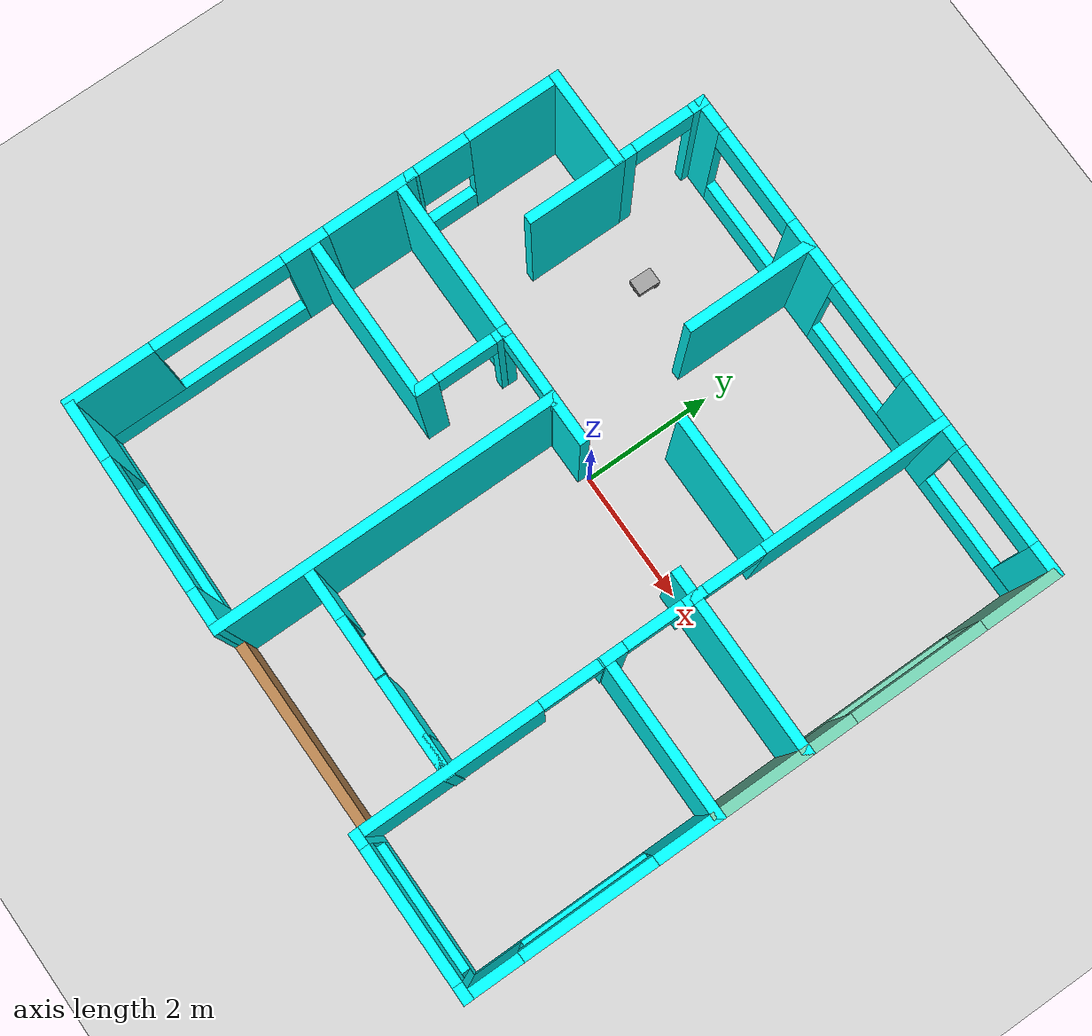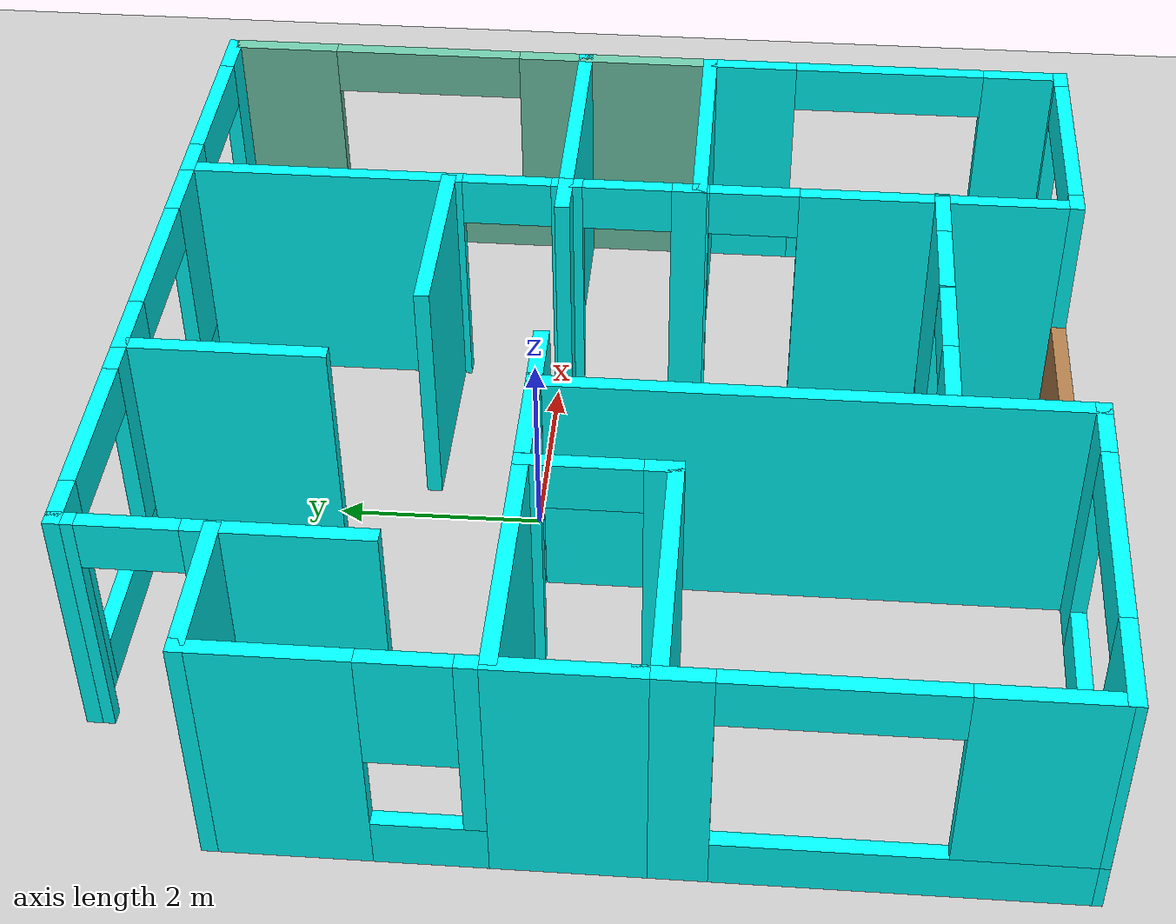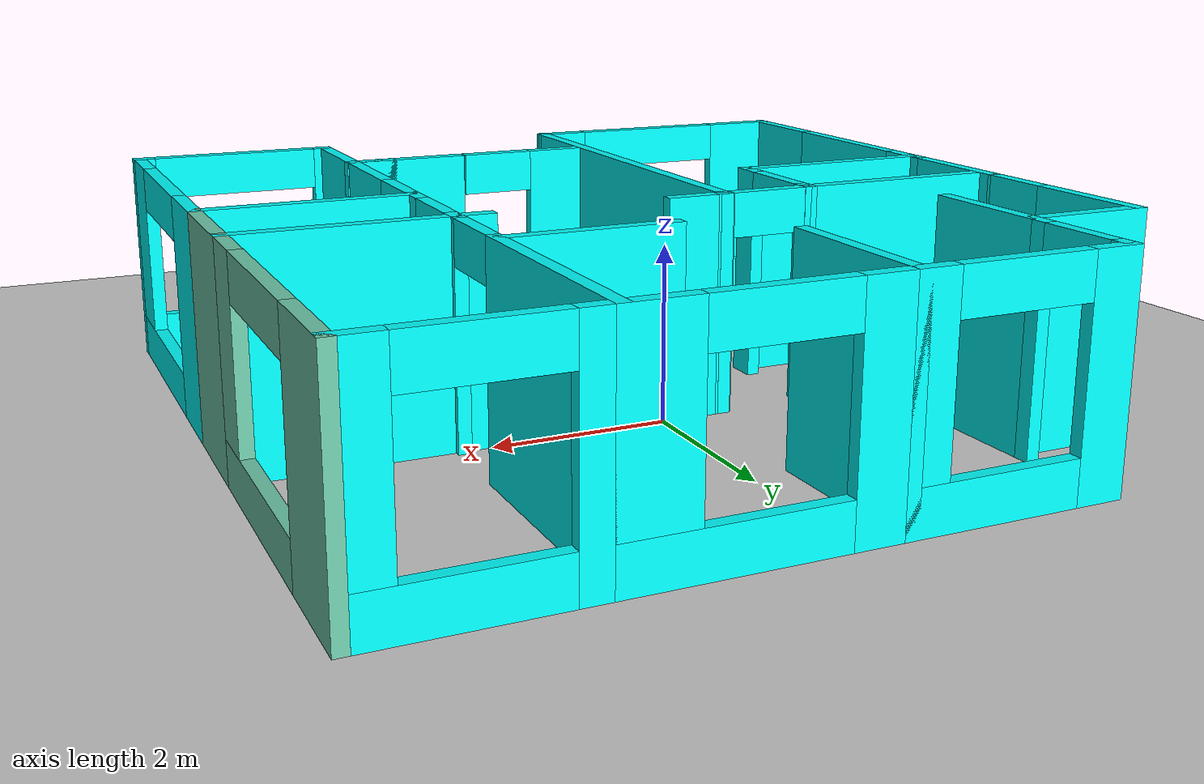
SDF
<sdf version="1.6">
 <world name="default">
  <model name="ground_plane">
   <static>1</static>
   <link name="link">
    <collision name="collision">
     <geometry><plane><normal>0 0 1</normal><size>100 100</size></plane></geometry>
     <surface><friction><ode><mu>100</mu><mu2>50</mu2></ode></friction></surface>
    </collision>
    <visual name="visual">
     <cast_shadows>0</cast_shadows>
     <geometry><plane><normal>0 0 1</normal><size>100 100</size></plane></geometry>
     <material>
      <script><uri>file://media/materials/scripts/gazebo.material</uri><name>Gazebo/Grey</name></script>
     </material>
    </visual>
   </link>
  </model>
  <model name="Building">
   <pose>0.22556 -0.704376 0 0 -0 0</pose>
   <link name="Wall_101">
    <collision name="Wall_101_Collision">
     <geometry><box><size>2.5 0.15 2.5</size></box></geometry>
     <pose>0 0 1.25 0 -0 0</pose>
    </collision>
    <visual name="Wall_101_Visual">
     <pose>0 0 1.25 0 -0 0</pose>
     <geometry><box><size>2.5 0.15 2.5</size></box></geometry>
     <material>
      <script><uri>file://media/materials/scripts/gazebo.material</uri><name>Gazebo/Grey</name></script>
      <ambient>0 1 1 1</ambient>
     </material>
     <meta><layer>0</layer></meta>
    </visual>
    <pose>-3.22857 0.625381 0 0 -0 3.14159</pose>
   </link>
   <link name="Wall_103">
    <pose>-1.5069 0.625381 0 0 -0 0</pose>
    <visual name="Wall_103_Visual_0">
     <pose>-0.545502 0 1.25 0 -0 0</pose>
     <geometry><box><size>0.152336 0.15 2.5</size></box></geometry>
     <material>
      <script><uri>file://media/materials/scripts/gazebo.material</uri><name>Gazebo/Grey</name></script>
      <ambient>0 1 1 1</ambient>
     </material>
     <meta><layer>0</layer></meta>
    </visual>
    <collision name="Wall_103_Collision_0">
     <geometry><box><size>0.152336 0.15 2.5</size></box></geometry>
     <pose>-0.545502 0 1.25 0 -0 0</pose>
    </collision>
    <visual name="Wall_103_Visual_1">
     <pose>0.526168 0 1.25 0 -0 0</pose>
     <geometry><box><size>0.191004 0.15 2.5</size></box></geometry>
     <material>
      <script><uri>file://media/materials/scripts/gazebo.material</uri><name>Gazebo/Grey</name></script>
      <ambient>0 1 1 1</ambient>
     </material>
     <meta><layer>0</layer></meta>
    </visual>
    <collision name="Wall_103_Collision_1">
     <geometry><box><size>0.191004 0.15 2.5</size></box></geometry>
     <pose>0.526168 0 1.25 0 -0 0</pose>
    </collision>
    <visual name="Wall_103_Visual_2">
     <pose>-0.019334 0 2.25 0 -0 0</pose>
     <geometry><box><size>0.9 0.15 0.5</size></box></geometry>
     <material>
      <script><uri>file://media/materials/scripts/gazebo.material</uri><name>Gazebo/Grey</name></script>
      <ambient>0 1 1 1</ambient>
     </material>
     <meta><layer>0</layer></meta>
    </visual>
    <collision name="Wall_103_Collision_2">
     <geometry><box><size>0.9 0.15 0.5</size></box></geometry>
     <pose>-0.019334 0 2.25 0 -0 0</pose>
    </collision>
   </link>
   <link name="Wall_105">
    <collision name="Wall_105_Collision">
     <geometry><box><size>0.75666 0.15 2.5</size></box></geometry>
     <pose>0 0 1.25 0 -0 0</pose>
    </collision>
    <visual name="Wall_105_Visual">
     <pose>0 0 1.25 0 -0 0</pose>
     <geometry><box><size>0.75666 0.15 2.5</size></box></geometry>
     <material>
      <script><uri>file://media/materials/scripts/gazebo.material</uri><name>Gazebo/Grey</name></script>
      <ambient>0 1 1 1</ambient>
     </material>
     <meta><layer>0</layer></meta>
    </visual>
    <pose>-0.656896 0.625381 0 0 -0 0</pose>
   </link>
   <link name="Wall_108">
    <collision name="Wall_108_Collision">
     <geometry><box><size>5.25 0.15 2.5</size></box></geometry>
     <pose>0 0 1.25 0 -0 0</pose>
    </collision>
    <visual name="Wall_108_Visual">
     <pose>0 0 1.25 0 -0 0</pose>
     <geometry><box><size>5.25 0.15 2.5</size></box></geometry>
     <material>
      <script><uri>file://media/materials/scripts/gazebo.material</uri><name>Gazebo/Grey</name></script>
      <ambient>0 1 1 1</ambient>
     </material>
     <meta><layer>0</layer></meta>
    </visual>
    <pose>-0.990859 -1.9245 0 0 0 -1.57088</pose>
   </link>
   <link name="Wall_112">
    <pose>2.10727 -2.52462 0 0 0 -1.5708</pose>
    <visual name="Wall_112_Visual_0">
     <pose>-1.78805 0 1.25 0 -0 0</pose>
     <geometry><box><size>0.173908 0.15 2.5</size></box></geometry>
     <material>
      <script><uri>file://media/materials/scripts/gazebo.material</uri><name>Gazebo/Grey</name></script>
      <ambient>0 1 1 1</ambient>
     </material>
     <meta><layer>0</layer></meta>
    </visual>
    <collision name="Wall_112_Collision_0">
     <geometry><box><size>0.173908 0.15 2.5</size></box></geometry>
     <pose>-1.78805 0 1.25 0 -0 0</pose>
    </collision>
    <visual name="Wall_112_Visual_1">
     <pose>0.536954 0 1.25 0 -0 0</pose>
     <geometry><box><size>2.67609 0.15 2.5</size></box></geometry>
     <material>
      <script><uri>file://media/materials/scripts/gazebo.material</uri><name>Gazebo/Grey</name></script>
      <ambient>0 1 1 1</ambient>
     </material>
     <meta><layer>0</layer></meta>
    </visual>
    <collision name="Wall_112_Collision_1">
     <geometry><box><size>2.67609 0.15 2.5</size></box></geometry>
     <pose>0.536954 0 1.25 0 -0 0</pose>
    </collision>
    <visual name="Wall_112_Visual_2">
     <pose>-1.25109 0 2.25 0 -0 0</pose>
     <geometry><box><size>0.9 0.15 0.5</size></box></geometry>
     <material>
      <script><uri>file://media/materials/scripts/gazebo.material</uri><name>Gazebo/Grey</name></script>
      <ambient>0 1 1 1</ambient>
     </material>
     <meta><layer>0</layer></meta>
    </visual>
    <collision name="Wall_112_Collision_2">
     <geometry><box><size>0.9 0.15 0.5</size></box></geometry>
     <pose>-1.25109 0 2.25 0 -0 0</pose>
    </collision>
   </link>
   <link name="Wall_114">
    <pose>0.571285 -3.1442 0 0 -0 0</pose>
    <visual name="Wall_114_Visual_0">
     <pose>-1.20415 0 1.25 0 -0 0</pose>
     <geometry><box><size>0.8417 0.15 2.5</size></box></geometry>
     <material>
      <script><uri>file://media/materials/scripts/gazebo.material</uri><name>Gazebo/Grey</name></script>
      <ambient>0 1 1 1</ambient>
     </material>
     <meta><layer>0</layer></meta>
    </visual>
    <collision name="Wall_114_Collision_0">
     <geometry><box><size>0.8417 0.15 2.5</size></box></geometry>
     <pose>-1.20415 0 1.25 0 -0 0</pose>
    </collision>
    <visual name="Wall_114_Visual_1">
     <pose>0.87085 0 1.25 0 -0 0</pose>
     <geometry><box><size>1.5083 0.15 2.5</size></box></geometry>
     <material>
      <script><uri>file://media/materials/scripts/gazebo.material</uri><name>Gazebo/Grey</name></script>
      <ambient>0 1 1 1</ambient>
     </material>
     <meta><layer>0</layer></meta>
    </visual>
    <collision name="Wall_114_Collision_1">
     <geometry><box><size>1.5083 0.15 2.5</size></box></geometry>
     <pose>0.87085 0 1.25 0 -0 0</pose>
    </collision>
    <visual name="Wall_114_Visual_2">
     <pose>1.3119 0 1.25 0 -0 0</pose>
     <geometry><box><size>0.626192 0.15 2.5</size></box></geometry>
     <material>
      <script><uri>file://media/materials/scripts/gazebo.material</uri><name>Gazebo/Grey</name></script>
      <ambient>0 1 1 1</ambient>
     </material>
     <meta><layer>0</layer></meta>
    </visual>
    <collision name="Wall_114_Collision_2">
     <geometry><box><size>0.626192 0.15 2.5</size></box></geometry>
     <pose>1.3119 0 1.25 0 -0 0</pose>
    </collision>
    <visual name="Wall_114_Visual_3">
     <pose>-0.342246 0 2.25 0 -0 0</pose>
     <geometry><box><size>0.882108 0.15 0.5</size></box></geometry>
     <material>
      <script><uri>file://media/materials/scripts/gazebo.material</uri><name>Gazebo/Grey</name></script>
      <ambient>0 1 1 1</ambient>
     </material>
     <meta><layer>0</layer></meta>
    </visual>
    <collision name="Wall_114_Collision_3">
     <geometry><box><size>0.882108 0.15 0.5</size></box></geometry>
     <pose>-0.342246 0 2.25 0 -0 0</pose>
    </collision>
   </link>
   <link name="Wall_118">
    <collision name="Wall_118_Collision">
     <geometry><box><size>3.25 0.15 1</size></box></geometry>
     <pose>0 0 0.5 0 -0 0</pose>
    </collision>
    <visual name="Wall_118_Visual">
     <pose>0 0 0.5 0 -0 0</pose>
     <geometry><box><size>3.25 0.15 1</size></box></geometry>
     <material>
      <script><uri>file://media/materials/scripts/gazebo.material</uri><name>Gazebo/Wood</name></script>
      <ambient>0 1 1 1</ambient>
     </material>
     <meta><layer>0</layer></meta>
    </visual>
    <pose>0.558926 -4.47438 0 0 -0 0</pose>
   </link>
   <link name="Wall_119">
    <pose>3.28414 -4.4745 0 0 0 -9.9e-05</pose>
    <visual name="Wall_119_Visual_0">
     <pose>-1.1272 0 1.25 0 -0 0</pose>
     <geometry><box><size>0.245591 0.15 2.5</size></box></geometry>
     <material>
      <script><uri>file://media/materials/scripts/gazebo.material</uri><name>Gazebo/Grey</name></script>
      <ambient>0 1 1 1</ambient>
     </material>
     <meta><layer>0</layer></meta>
    </visual>
    <collision name="Wall_119_Collision_0">
     <geometry><box><size>0.245591 0.15 2.5</size></box></geometry>
     <pose>-1.1272 0 1.25 0 -0 0</pose>
    </collision>
    <visual name="Wall_119_Visual_1">
     <pose>0.122796 0 0.25 0 -0 0</pose>
     <geometry><box><size>2.25441 0.15 0.5</size></box></geometry>
     <material>
      <script><uri>file://media/materials/scripts/gazebo.material</uri><name>Gazebo/Grey</name></script>
      <ambient>0 1 1 1</ambient>
     </material>
     <meta><layer>0</layer></meta>
    </visual>
    <collision name="Wall_119_Collision_1">
     <geometry><box><size>2.25441 0.15 0.5</size></box></geometry>
     <pose>0.122796 0 0.25 0 -0 0</pose>
    </collision>
    <visual name="Wall_119_Visual_2">
     <pose>1.1228 0 1.5 0 -0 0</pose>
     <geometry><box><size>0.254409 0.15 2</size></box></geometry>
     <material>
      <script><uri>file://media/materials/scripts/gazebo.material</uri><name>Gazebo/Grey</name></script>
      <ambient>0 1 1 1</ambient>
     </material>
     <meta><layer>0</layer></meta>
    </visual>
    <collision name="Wall_119_Collision_2">
     <geometry><box><size>0.254409 0.15 2</size></box></geometry>
     <pose>1.1228 0 1.5 0 -0 0</pose>
    </collision>
    <visual name="Wall_119_Visual_3">
     <pose>-0.004409 0 2.25 0 -0 0</pose>
     <geometry><box><size>2 0.15 0.5</size></box></geometry>
     <material>
      <script><uri>file://media/materials/scripts/gazebo.material</uri><name>Gazebo/Grey</name></script>
      <ambient>0 1 1 1</ambient>
     </material>
     <meta><layer>0</layer></meta>
    </visual>
    <collision name="Wall_119_Collision_3">
     <geometry><box><size>2 0.15 0.5</size></box></geometry>
     <pose>-0.004409 0 2.25 0 -0 0</pose>
    </collision>
   </link>
   <link name="Wall_121">
    <pose>-2.72451 -4.45129 0 0 -0 3.12827</pose>
    <visual name="Wall_121_Visual_0">
     <pose>-1.47874 0 1.25 0 -0 0</pose>
     <geometry><box><size>0.660134 0.15 2.5</size></box></geometry>
     <material>
      <script><uri>file://media/materials/scripts/gazebo.material</uri><name>Gazebo/Grey</name></script>
      <ambient>0 1 1 1</ambient>
     </material>
     <meta><layer>0</layer></meta>
    </visual>
    <collision name="Wall_121_Collision_0">
     <geometry><box><size>0.660134 0.15 2.5</size></box></geometry>
     <pose>-1.47874 0 1.25 0 -0 0</pose>
    </collision>
    <visual name="Wall_121_Visual_1">
     <pose>0.330067 0 0.25 0 -0 0</pose>
     <geometry><box><size>2.95747 0.15 0.5</size></box></geometry>
     <material>
      <script><uri>file://media/materials/scripts/gazebo.material</uri><name>Gazebo/Grey</name></script>
      <ambient>0 1 1 1</ambient>
     </material>
     <meta><layer>0</layer></meta>
    </visual>
    <collision name="Wall_121_Collision_1">
     <geometry><box><size>2.95747 0.15 0.5</size></box></geometry>
     <pose>0.330067 0 0.25 0 -0 0</pose>
    </collision>
    <visual name="Wall_121_Visual_2">
     <pose>1.33007 0 1.5 0 -0 0</pose>
     <geometry><box><size>0.957473 0.15 2</size></box></geometry>
     <material>
      <script><uri>file://media/materials/scripts/gazebo.material</uri><name>Gazebo/Grey</name></script>
      <ambient>0 1 1 1</ambient>
     </material>
     <meta><layer>0</layer></meta>
    </visual>
    <collision name="Wall_121_Collision_2">
     <geometry><box><size>0.957473 0.15 2</size></box></geometry>
     <pose>1.33007 0 1.5 0 -0 0</pose>
    </collision>
    <visual name="Wall_121_Visual_3">
     <pose>-0.148669 0 2.25 0 -0 0</pose>
     <geometry><box><size>2 0.15 0.5</size></box></geometry>
     <material>
      <script><uri>file://media/materials/scripts/gazebo.material</uri><name>Gazebo/Grey</name></script>
      <ambient>0 1 1 1</ambient>
     </material>
     <meta><layer>0</layer></meta>
    </visual>
    <collision name="Wall_121_Collision_3">
     <geometry><box><size>2 0.15 0.5</size></box></geometry>
     <pose>-0.148669 0 2.25 0 -0 0</pose>
    </collision>
   </link>
   <link name="Wall_47">
    <pose>-1.91773 4.47538 0 0 -0 0</pose>
    <visual name="Wall_47_Visual_0">
     <pose>-0.97915 0 1.25 0 -0 0</pose>
     <geometry><box><size>0.541699 0.15 2.5</size></box></geometry>
     <material>
      <script><uri>file://media/materials/scripts/gazebo.material</uri><name>Gazebo/Grey</name></script>
      <ambient>0 1 1 1</ambient>
     </material>
     <meta><layer>0</layer></meta>
    </visual>
    <collision name="Wall_47_Collision_0">
     <geometry><box><size>0.541699 0.15 2.5</size></box></geometry>
     <pose>-0.97915 0 1.25 0 -0 0</pose>
    </collision>
    <visual name="Wall_47_Visual_1">
     <pose>0.27085 0 0.25 0 -0 0</pose>
     <geometry><box><size>1.9583 0.15 0.5</size></box></geometry>
     <material>
      <script><uri>file://media/materials/scripts/gazebo.material</uri><name>Gazebo/Grey</name></script>
      <ambient>0 1 1 1</ambient>
     </material>
     <meta><layer>0</layer></meta>
    </visual>
    <collision name="Wall_47_Collision_1">
     <geometry><box><size>1.9583 0.15 0.5</size></box></geometry>
     <pose>0.27085 0 0.25 0 -0 0</pose>
    </collision>
    <visual name="Wall_47_Visual_2">
     <pose>1.02085 0 1.5 0 -0 0</pose>
     <geometry><box><size>0.458301 0.15 2</size></box></geometry>
     <material>
      <script><uri>file://media/materials/scripts/gazebo.material</uri><name>Gazebo/Grey</name></script>
      <ambient>0 1 1 1</ambient>
     </material>
     <meta><layer>0</layer></meta>
    </visual>
    <collision name="Wall_47_Collision_2">
     <geometry><box><size>0.458301 0.15 2</size></box></geometry>
     <pose>1.02085 0 1.5 0 -0 0</pose>
    </collision>
    <visual name="Wall_47_Visual_3">
     <pose>0.041699 0 2.25 0 -0 0</pose>
     <geometry><box><size>1.5 0.15 0.5</size></box></geometry>
     <material>
      <script><uri>file://media/materials/scripts/gazebo.material</uri><name>Gazebo/Grey</name></script>
      <ambient>0 1 1 1</ambient>
     </material>
     <meta><layer>0</layer></meta>
    </visual>
    <collision name="Wall_47_Collision_3">
     <geometry><box><size>1.5 0.15 0.5</size></box></geometry>
     <pose>0.041699 0 2.25 0 -0 0</pose>
    </collision>
   </link>
   <link name="Wall_48">
    <pose>0.682269 4.47538 0 0 -0 0</pose>
    <visual name="Wall_48_Visual_0">
     <pose>-1.15703 0 1.25 0 -0 0</pose>
     <geometry><box><size>0.685935 0.15 2.5</size></box></geometry>
     <material>
      <script><uri>file://media/materials/scripts/gazebo.material</uri><name>Gazebo/Grey</name></script>
      <ambient>0 1 1 1</ambient>
     </material>
     <meta><layer>0</layer></meta>
    </visual>
    <collision name="Wall_48_Collision_0">
     <geometry><box><size>0.685935 0.15 2.5</size></box></geometry>
     <pose>-1.15703 0 1.25 0 -0 0</pose>
    </collision>
    <visual name="Wall_48_Visual_1">
     <pose>0.342968 0 0.25 0 -0 0</pose>
     <geometry><box><size>2.31406 0.15 0.5</size></box></geometry>
     <material>
      <script><uri>file://media/materials/scripts/gazebo.material</uri><name>Gazebo/Grey</name></script>
      <ambient>0 1 1 1</ambient>
     </material>
     <meta><layer>0</layer></meta>
    </visual>
    <collision name="Wall_48_Collision_1">
     <geometry><box><size>2.31406 0.15 0.5</size></box></geometry>
     <pose>0.342968 0 0.25 0 -0 0</pose>
    </collision>
    <visual name="Wall_48_Visual_2">
     <pose>1.09297 0 1.5 0 -0 0</pose>
     <geometry><box><size>0.814065 0.15 2</size></box></geometry>
     <material>
      <script><uri>file://media/materials/scripts/gazebo.material</uri><name>Gazebo/Grey</name></script>
      <ambient>0 1 1 1</ambient>
     </material>
     <meta><layer>0</layer></meta>
    </visual>
    <collision name="Wall_48_Collision_2">
     <geometry><box><size>0.814065 0.15 2</size></box></geometry>
     <pose>1.09297 0 1.5 0 -0 0</pose>
    </collision>
    <visual name="Wall_48_Visual_3">
     <pose>-0.064065 0 2.25 0 -0 0</pose>
     <geometry><box><size>1.5 0.15 0.5</size></box></geometry>
     <material>
      <script><uri>file://media/materials/scripts/gazebo.material</uri><name>Gazebo/Grey</name></script>
      <ambient>0 1 1 1</ambient>
     </material>
     <meta><layer>0</layer></meta>
    </visual>
    <collision name="Wall_48_Collision_3">
     <geometry><box><size>1.5 0.15 0.5</size></box></geometry>
     <pose>-0.064065 0 2.25 0 -0 0</pose>
    </collision>
   </link>
   <link name="Wall_49">
    <pose>3.28227 4.47538 0 0 -0 0</pose>
    <visual name="Wall_49_Visual_0">
     <pose>-1.01648 0 1.25 0 -0 0</pose>
     <geometry><box><size>0.467049 0.15 2.5</size></box></geometry>
     <material>
      <script><uri>file://media/materials/scripts/gazebo.material</uri><name>Gazebo/Grey</name></script>
      <ambient>0 1 1 1</ambient>
     </material>
     <meta><layer>0</layer></meta>
    </visual>
    <collision name="Wall_49_Collision_0">
     <geometry><box><size>0.467049 0.15 2.5</size></box></geometry>
     <pose>-1.01648 0 1.25 0 -0 0</pose>
    </collision>
    <visual name="Wall_49_Visual_1">
     <pose>0.233524 0 0.25 0 -0 0</pose>
     <geometry><box><size>2.03295 0.15 0.5</size></box></geometry>
     <material>
      <script><uri>file://media/materials/scripts/gazebo.material</uri><name>Gazebo/Grey</name></script>
      <ambient>0 1 1 1</ambient>
     </material>
     <meta><layer>0</layer></meta>
    </visual>
    <collision name="Wall_49_Collision_1">
     <geometry><box><size>2.03295 0.15 0.5</size></box></geometry>
     <pose>0.233524 0 0.25 0 -0 0</pose>
    </collision>
    <visual name="Wall_49_Visual_2">
     <pose>0.983524 0 1.5 0 -0 0</pose>
     <geometry><box><size>0.532951 0.15 2</size></box></geometry>
     <material>
      <script><uri>file://media/materials/scripts/gazebo.material</uri><name>Gazebo/Grey</name></script>
      <ambient>0 1 1 1</ambient>
     </material>
     <meta><layer>0</layer></meta>
    </visual>
    <collision name="Wall_49_Collision_2">
     <geometry><box><size>0.532951 0.15 2</size></box></geometry>
     <pose>0.983524 0 1.5 0 -0 0</pose>
    </collision>
    <visual name="Wall_49_Visual_3">
     <pose>-0.032951 0 2.25 0 -0 0</pose>
     <geometry><box><size>1.5 0.15 0.5</size></box></geometry>
     <material>
      <script><uri>file://media/materials/scripts/gazebo.material</uri><name>Gazebo/Grey</name></script>
      <ambient>0 1 1 1</ambient>
     </material>
     <meta><layer>0</layer></meta>
    </visual>
    <collision name="Wall_49_Collision_3">
     <geometry><box><size>1.5 0.15 0.5</size></box></geometry>
     <pose>-0.032951 0 2.25 0 -0 0</pose>
    </collision>
   </link>
   <link name="Wall_50">
    <pose>4.45727 2.55038 0 0 0 -1.5708</pose>
    <visual name="Wall_50_Visual_0">
     <pose>-1.39789 0 1.25 0 -0 0</pose>
     <geometry><box><size>1.20423 0.15 2.5</size></box></geometry>
     <material>
      <script><uri>file://media/materials/scripts/gazebo.material</uri><name>Gazebo/Grey</name></script>
      <ambient>0.435294 0.796078 0.67451 1</ambient>
     </material>
     <meta><layer>0</layer></meta>
    </visual>
    <collision name="Wall_50_Collision_0">
     <geometry><box><size>1.20423 0.15 2.5</size></box></geometry>
     <pose>-1.39789 0 1.25 0 -0 0</pose>
    </collision>
    <visual name="Wall_50_Visual_1">
     <pose>0.602112 0 0.25 0 -0 0</pose>
     <geometry><box><size>2.79577 0.15 0.5</size></box></geometry>
     <material>
      <script><uri>file://media/materials/scripts/gazebo.material</uri><name>Gazebo/Grey</name></script>
      <ambient>0.435294 0.796078 0.67451 1</ambient>
     </material>
     <meta><layer>0</layer></meta>
    </visual>
    <collision name="Wall_50_Collision_1">
     <geometry><box><size>2.79577 0.15 0.5</size></box></geometry>
     <pose>0.602112 0 0.25 0 -0 0</pose>
    </collision>
    <visual name="Wall_50_Visual_2">
     <pose>1.60211 0 1.5 0 -0 0</pose>
     <geometry><box><size>0.795775 0.15 2</size></box></geometry>
     <material>
      <script><uri>file://media/materials/scripts/gazebo.material</uri><name>Gazebo/Grey</name></script>
      <ambient>0.435294 0.796078 0.67451 1</ambient>
     </material>
     <meta><layer>0</layer></meta>
    </visual>
    <collision name="Wall_50_Collision_2">
     <geometry><box><size>0.795775 0.15 2</size></box></geometry>
     <pose>1.60211 0 1.5 0 -0 0</pose>
    </collision>
    <visual name="Wall_50_Visual_3">
     <pose>0.204225 0 2.25 0 -0 0</pose>
     <geometry><box><size>2 0.15 0.5</size></box></geometry>
     <material>
      <script><uri>file://media/materials/scripts/gazebo.material</uri><name>Gazebo/Grey</name></script>
      <ambient>0.435294 0.796078 0.67451 1</ambient>
     </material>
     <meta><layer>0</layer></meta>
    </visual>
    <collision name="Wall_50_Collision_3">
     <geometry><box><size>2 0.15 0.5</size></box></geometry>
     <pose>0.204225 0 2.25 0 -0 0</pose>
    </collision>
   </link>
   <link name="Wall_55">
    <pose>-3.09273 3.80038 0 0 0 -1.5708</pose>
    <visual name="Wall_55_Visual_0">
     <pose>-0.618116 0 1.25 0 -0 0</pose>
     <geometry><box><size>0.263768 0.15 2.5</size></box></geometry>
     <material>
      <script><uri>file://media/materials/scripts/gazebo.material</uri><name>Gazebo/Grey</name></script>
      <ambient>0 1 1 1</ambient>
     </material>
     <meta><layer>0</layer></meta>
    </visual>
    <collision name="Wall_55_Collision_0">
     <geometry><box><size>0.263768 0.15 2.5</size></box></geometry>
     <pose>-0.618116 0 1.25 0 -0 0</pose>
    </collision>
    <visual name="Wall_55_Visual_1">
     <pose>0.581884 0 1.25 0 -0 0</pose>
     <geometry><box><size>0.336232 0.15 2.5</size></box></geometry>
     <material>
      <script><uri>file://media/materials/scripts/gazebo.material</uri><name>Gazebo/Grey</name></script>
      <ambient>0 1 1 1</ambient>
     </material>
     <meta><layer>0</layer></meta>
    </visual>
    <collision name="Wall_55_Collision_1">
     <geometry><box><size>0.336232 0.15 2.5</size></box></geometry>
     <pose>0.581884 0 1.25 0 -0 0</pose>
    </collision>
    <visual name="Wall_55_Visual_2">
     <pose>-0.036232 0 2.25 0 -0 0</pose>
     <geometry><box><size>0.9 0.15 0.5</size></box></geometry>
     <material>
      <script><uri>file://media/materials/scripts/gazebo.material</uri><name>Gazebo/Grey</name></script>
      <ambient>0 1 1 1</ambient>
     </material>
     <meta><layer>0</layer></meta>
    </visual>
    <collision name="Wall_55_Collision_2">
     <geometry><box><size>0.9 0.15 0.5</size></box></geometry>
     <pose>-0.036232 0 2.25 0 -0 0</pose>
    </collision>
   </link>
   <link name="Wall_56">
    <collision name="Wall_56_Collision">
     <geometry><box><size>1.5 0.15 2.5</size></box></geometry>
     <pose>0 0 1.25 0 -0 0</pose>
    </collision>
    <visual name="Wall_56_Visual">
     <pose>0 0 1.25 0 -0 0</pose>
     <geometry><box><size>1.5 0.15 2.5</size></box></geometry>
     <material>
      <script><uri>file://media/materials/scripts/gazebo.material</uri><name>Gazebo/Grey</name></script>
      <ambient>0 1 1 1</ambient>
     </material>
     <meta><layer>0</layer></meta>
    </visual>
    <pose>-3.09273 2.45038 0 0 0 -1.5708</pose>
   </link>
   <link name="Wall_58">
    <collision name="Wall_58_Collision">
     <geometry><box><size>1.5 0.15 2.5</size></box></geometry>
     <pose>0 0 1.25 0 -0 0</pose>
    </collision>
    <visual name="Wall_58_Visual">
     <pose>0 0 1.25 0 -0 0</pose>
     <geometry><box><size>1.5 0.15 2.5</size></box></geometry>
     <material>
      <script><uri>file://media/materials/scripts/gazebo.material</uri><name>Gazebo/Grey</name></script>
      <ambient>0 1 1 1</ambient>
     </material>
     <meta><layer>0</layer></meta>
    </visual>
    <pose>-3.78294 3.1218 0 0 -0 3.14159</pose>
   </link>
   <link name="Wall_60">
    <pose>-4.45794 1.9468 0 0 0 -1.5708</pose>
    <visual name="Wall_60_Visual_0">
     <pose>-0.499975 0 1.25 0 -0 0</pose>
     <geometry><box><size>1.50005 0.15 2.5</size></box></geometry>
     <material>
      <script><uri>file://media/materials/scripts/gazebo.material</uri><name>Gazebo/Grey</name></script>
      <ambient>0 1 1 1</ambient>
     </material>
     <meta><layer>0</layer></meta>
    </visual>
    <collision name="Wall_60_Collision_0">
     <geometry><box><size>1.50005 0.15 2.5</size></box></geometry>
     <pose>-0.499975 0 1.25 0 -0 0</pose>
    </collision>
    <visual name="Wall_60_Visual_1">
     <pose>0.750025 0 0.25 0 -0 0</pose>
     <geometry><box><size>0.99995 0.15 0.5</size></box></geometry>
     <material>
      <script><uri>file://media/materials/scripts/gazebo.material</uri><name>Gazebo/Grey</name></script>
      <ambient>0 1 1 1</ambient>
     </material>
     <meta><layer>0</layer></meta>
    </visual>
    <collision name="Wall_60_Collision_1">
     <geometry><box><size>0.99995 0.15 0.5</size></box></geometry>
     <pose>0.750025 0 0.25 0 -0 0</pose>
    </collision>
    <visual name="Wall_60_Visual_2">
     <pose>1.15003 0 1.5 0 -0 0</pose>
     <geometry><box><size>0.19995 0.15 2</size></box></geometry>
     <material>
      <script><uri>file://media/materials/scripts/gazebo.material</uri><name>Gazebo/Grey</name></script>
      <ambient>0 1 1 1</ambient>
     </material>
     <meta><layer>0</layer></meta>
    </visual>
    <collision name="Wall_60_Collision_2">
     <geometry><box><size>0.19995 0.15 2</size></box></geometry>
     <pose>1.15003 0 1.5 0 -0 0</pose>
    </collision>
    <visual name="Wall_60_Visual_3">
     <pose>0.65005 0 1.9 0 -0 0</pose>
     <geometry><box><size>0.8 0.15 1.2</size></box></geometry>
     <material>
      <script><uri>file://media/materials/scripts/gazebo.material</uri><name>Gazebo/Grey</name></script>
      <ambient>0 1 1 1</ambient>
     </material>
     <meta><layer>0</layer></meta>
    </visual>
    <collision name="Wall_60_Collision_3">
     <geometry><box><size>0.8 0.15 1.2</size></box></geometry>
     <pose>0.65005 0 1.9 0 -0 0</pose>
    </collision>
   </link>
   <link name="Wall_61">
    <collision name="Wall_61_Collision">
     <geometry><box><size>1.5 0.15 2.5</size></box></geometry>
     <pose>0 0 1.25 0 -0 0</pose>
    </collision>
    <visual name="Wall_61_Visual">
     <pose>0 0 1.25 0 -0 0</pose>
     <geometry><box><size>1.5 0.15 2.5</size></box></geometry>
     <material>
      <script><uri>file://media/materials/scripts/gazebo.material</uri><name>Gazebo/Grey</name></script>
      <ambient>0 1 1 1</ambient>
     </material>
     <meta><layer>0</layer></meta>
    </visual>
    <pose>-4.45794 0.096802 0 0 0 -1.5708</pose>
   </link>
   <link name="Wall_62">
    <pose>-4.45794 -2.5032 0 0 0 -1.5708</pose>
    <visual name="Wall_62_Visual_0">
     <pose>-1.66618 0 1.25 0 -0 0</pose>
     <geometry><box><size>0.667645 0.15 2.5</size></box></geometry>
     <material>
      <script><uri>file://media/materials/scripts/gazebo.material</uri><name>Gazebo/Grey</name></script>
      <ambient>0 1 1 1</ambient>
     </material>
     <meta><layer>0</layer></meta>
    </visual>
    <collision name="Wall_62_Collision_0">
     <geometry><box><size>0.667645 0.15 2.5</size></box></geometry>
     <pose>-1.66618 0 1.25 0 -0 0</pose>
    </collision>
    <visual name="Wall_62_Visual_1">
     <pose>0.333822 0 0.25 0 -0 0</pose>
     <geometry><box><size>3.33236 0.15 0.5</size></box></geometry>
     <material>
      <script><uri>file://media/materials/scripts/gazebo.material</uri><name>Gazebo/Grey</name></script>
      <ambient>0 1 1 1</ambient>
     </material>
     <meta><layer>0</layer></meta>
    </visual>
    <collision name="Wall_62_Collision_1">
     <geometry><box><size>3.33236 0.15 0.5</size></box></geometry>
     <pose>0.333822 0 0.25 0 -0 0</pose>
    </collision>
    <visual name="Wall_62_Visual_2">
     <pose>1.33382 0 1.5 0 -0 0</pose>
     <geometry><box><size>1.33235 0.15 2</size></box></geometry>
     <material>
      <script><uri>file://media/materials/scripts/gazebo.material</uri><name>Gazebo/Grey</name></script>
      <ambient>0 1 1 1</ambient>
     </material>
     <meta><layer>0</layer></meta>
    </visual>
    <collision name="Wall_62_Collision_2">
     <geometry><box><size>1.33235 0.15 2</size></box></geometry>
     <pose>1.33382 0 1.5 0 -0 0</pose>
    </collision>
    <visual name="Wall_62_Visual_3">
     <pose>-0.332355 0 2.25 0 -0 0</pose>
     <geometry><box><size>2 0.15 0.5</size></box></geometry>
     <material>
      <script><uri>file://media/materials/scripts/gazebo.material</uri><name>Gazebo/Grey</name></script>
      <ambient>0 1 1 1</ambient>
     </material>
     <meta><layer>0</layer></meta>
    </visual>
    <collision name="Wall_62_Collision_3">
     <geometry><box><size>2 0.15 0.5</size></box></geometry>
     <pose>-0.332355 0 2.25 0 -0 0</pose>
    </collision>
   </link>
   <link name="Wall_67">
    <collision name="Wall_67_Collision">
     <geometry><box><size>1.5 0.15 2.5</size></box></geometry>
     <pose>0 0 1.25 0 -0 0</pose>
    </collision>
    <visual name="Wall_67_Visual">
     <pose>0 0 1.25 0 -0 0</pose>
     <geometry><box><size>1.5 0.15 2.5</size></box></geometry>
     <material>
      <script><uri>file://media/materials/scripts/gazebo.material</uri><name>Gazebo/Grey</name></script>
      <ambient>0.435294 0.796078 0.67451 1</ambient>
     </material>
     <meta><layer>0</layer></meta>
    </visual>
    <pose>4.45727 -0.049619 0 0 0 -1.5708</pose>
   </link>
   <link name="Wall_68">
    <pose>4.45727 -2.52462 0 0 0 -1.5708</pose>
    <visual name="Wall_68_Visual_0">
     <pose>-1.37112 0 1.25 0 -0 0</pose>
     <geometry><box><size>1.00777 0.15 2.5</size></box></geometry>
     <material>
      <script><uri>file://media/materials/scripts/gazebo.material</uri><name>Gazebo/Grey</name></script>
      <ambient>0 1 1 1</ambient>
     </material>
     <meta><layer>0</layer></meta>
    </visual>
    <collision name="Wall_68_Collision_0">
     <geometry><box><size>1.00777 0.15 2.5</size></box></geometry>
     <pose>-1.37112 0 1.25 0 -0 0</pose>
    </collision>
    <visual name="Wall_68_Visual_1">
     <pose>0.503883 0 0.25 0 -0 0</pose>
     <geometry><box><size>2.74223 0.15 0.5</size></box></geometry>
     <material>
      <script><uri>file://media/materials/scripts/gazebo.material</uri><name>Gazebo/Grey</name></script>
      <ambient>0 1 1 1</ambient>
     </material>
     <meta><layer>0</layer></meta>
    </visual>
    <collision name="Wall_68_Collision_1">
     <geometry><box><size>2.74223 0.15 0.5</size></box></geometry>
     <pose>0.503883 0 0.25 0 -0 0</pose>
    </collision>
    <visual name="Wall_68_Visual_2">
     <pose>1.50388 0 1.5 0 -0 0</pose>
     <geometry><box><size>0.742234 0.15 2</size></box></geometry>
     <material>
      <script><uri>file://media/materials/scripts/gazebo.material</uri><name>Gazebo/Grey</name></script>
      <ambient>0 1 1 1</ambient>
     </material>
     <meta><layer>0</layer></meta>
    </visual>
    <collision name="Wall_68_Collision_2">
     <geometry><box><size>0.742234 0.15 2</size></box></geometry>
     <pose>1.50388 0 1.5 0 -0 0</pose>
    </collision>
    <visual name="Wall_68_Visual_3">
     <pose>0.132766 0 2.25 0 -0 0</pose>
     <geometry><box><size>2 0.15 0.5</size></box></geometry>
     <material>
      <script><uri>file://media/materials/scripts/gazebo.material</uri><name>Gazebo/Grey</name></script>
      <ambient>0 1 1 1</ambient>
     </material>
     <meta><layer>0</layer></meta>
    </visual>
    <collision name="Wall_68_Collision_3">
     <geometry><box><size>2 0.15 0.5</size></box></geometry>
     <pose>0.132766 0 2.25 0 -0 0</pose>
    </collision>
   </link>
   <link name="Wall_72">
    <collision name="Wall_72_Collision">
     <geometry><box><size>2 0.15 2.5</size></box></geometry>
     <pose>0 0 1.25 0 -0 0</pose>
    </collision>
    <visual name="Wall_72_Visual">
     <pose>0 0 1.25 0 -0 0</pose>
     <geometry><box><size>2 0.15 2.5</size></box></geometry>
     <material>
      <script><uri>file://media/materials/scripts/gazebo.material</uri><name>Gazebo/Grey</name></script>
      <ambient>0 1 1 1</ambient>
     </material>
     <meta><layer>0</layer></meta>
    </visual>
    <pose>-0.742731 3.55038 0 0 0 -1.5708</pose>
   </link>
   <link name="Wall_74">
    <collision name="Wall_74_Collision">
     <geometry><box><size>2.5 0.15 2.5</size></box></geometry>
     <pose>0 0 1.25 0 -0 0</pose>
    </collision>
    <visual name="Wall_74_Visual">
     <pose>0 0 1.25 0 -0 0</pose>
     <geometry><box><size>2.5 0.15 2.5</size></box></geometry>
     <material>
      <script><uri>file://media/materials/scripts/gazebo.material</uri><name>Gazebo/Grey</name></script>
      <ambient>0 1 1 1</ambient>
     </material>
     <meta><layer>0</layer></meta>
    </visual>
    <pose>3.28227 0.625381 0 0 -0 3.14159</pose>
   </link>
   <link name="Wall_75">
    <pose>2.10727 2.55038 0 0 -0 1.5708</pose>
    <visual name="Wall_75_Visual_0">
     <pose>-1.88984 0 1.25 0 -0 0</pose>
     <geometry><box><size>0.220328 0.15 2.5</size></box></geometry>
     <material>
      <script><uri>file://media/materials/scripts/gazebo.material</uri><name>Gazebo/Grey</name></script>
      <ambient>0 1 1 1</ambient>
     </material>
     <meta><layer>0</layer></meta>
    </visual>
    <collision name="Wall_75_Collision_0">
     <geometry><box><size>0.220328 0.15 2.5</size></box></geometry>
     <pose>-1.88984 0 1.25 0 -0 0</pose>
    </collision>
    <visual name="Wall_75_Visual_1">
     <pose>0.560164 0 1.25 0 -0 0</pose>
     <geometry><box><size>2.87967 0.15 2.5</size></box></geometry>
     <material>
      <script><uri>file://media/materials/scripts/gazebo.material</uri><name>Gazebo/Grey</name></script>
      <ambient>0 1 1 1</ambient>
     </material>
     <meta><layer>0</layer></meta>
    </visual>
    <collision name="Wall_75_Collision_1">
     <geometry><box><size>2.87967 0.15 2.5</size></box></geometry>
     <pose>0.560164 0 1.25 0 -0 0</pose>
    </collision>
    <visual name="Wall_75_Visual_2">
     <pose>-1.32967 0 2.25 0 -0 0</pose>
     <geometry><box><size>0.9 0.15 0.5</size></box></geometry>
     <material>
      <script><uri>file://media/materials/scripts/gazebo.material</uri><name>Gazebo/Grey</name></script>
      <ambient>0 1 1 1</ambient>
     </material>
     <meta><layer>0</layer></meta>
    </visual>
    <collision name="Wall_75_Collision_2">
     <geometry><box><size>0.9 0.15 0.5</size></box></geometry>
     <pose>-1.32967 0 2.25 0 -0 0</pose>
    </collision>
   </link>
   <link name="Wall_77">
    <collision name="Wall_77_Collision">
     <geometry><box><size>2 0.15 2.5</size></box></geometry>
     <pose>0 0 1.25 0 -0 0</pose>
    </collision>
    <visual name="Wall_77_Visual">
     <pose>0 0 1.25 0 -0 0</pose>
     <geometry><box><size>2 0.15 2.5</size></box></geometry>
     <material>
      <script><uri>file://media/materials/scripts/gazebo.material</uri><name>Gazebo/Grey</name></script>
      <ambient>0 1 1 1</ambient>
     </material>
     <meta><layer>0</layer></meta>
    </visual>
    <pose>1.15324 1.81385 0 0 -0 3.14159</pose>
   </link>
   <link name="Wall_79">
    <pose>2.10727 -0.049619 0 0 0 -1.5708</pose>
    <visual name="Wall_79_Visual_0">
     <pose>-0.626814 0 1.25 0 -0 0</pose>
     <geometry><box><size>0.246373 0.15 2.5</size></box></geometry>
     <material>
      <script><uri>file://media/materials/scripts/gazebo.material</uri><name>Gazebo/Grey</name></script>
      <ambient>0 1 1 1</ambient>
     </material>
     <meta><layer>0</layer></meta>
    </visual>
    <collision name="Wall_79_Collision_0">
     <geometry><box><size>0.246373 0.15 2.5</size></box></geometry>
     <pose>-0.626814 0 1.25 0 -0 0</pose>
    </collision>
    <visual name="Wall_79_Visual_1">
     <pose>0.573186 0 1.25 0 -0 0</pose>
     <geometry><box><size>0.353627 0.15 2.5</size></box></geometry>
     <material>
      <script><uri>file://media/materials/scripts/gazebo.material</uri><name>Gazebo/Grey</name></script>
      <ambient>0 1 1 1</ambient>
     </material>
     <meta><layer>0</layer></meta>
    </visual>
    <collision name="Wall_79_Collision_1">
     <geometry><box><size>0.353627 0.15 2.5</size></box></geometry>
     <pose>0.573186 0 1.25 0 -0 0</pose>
    </collision>
    <visual name="Wall_79_Visual_2">
     <pose>-0.053627 0 2.25 0 -0 0</pose>
     <geometry><box><size>0.9 0.15 0.5</size></box></geometry>
     <material>
      <script><uri>file://media/materials/scripts/gazebo.material</uri><name>Gazebo/Grey</name></script>
      <ambient>0 1 1 1</ambient>
     </material>
     <meta><layer>0</layer></meta>
    </visual>
    <collision name="Wall_79_Collision_2">
     <geometry><box><size>0.9 0.15 0.5</size></box></geometry>
     <pose>-0.053627 0 2.25 0 -0 0</pose>
    </collision>
   </link>
   <link name="Wall_80">
    <collision name="Wall_80_Collision">
     <geometry><box><size>2.5 0.15 2.5</size></box></geometry>
     <pose>0 0 1.25 0 -0 0</pose>
    </collision>
    <visual name="Wall_80_Visual">
     <pose>0 0 1.25 0 -0 0</pose>
     <geometry><box><size>2.5 0.15 2.5</size></box></geometry>
     <material>
      <script><uri>file://media/materials/scripts/gazebo.material</uri><name>Gazebo/Grey</name></script>
      <ambient>0 1 1 1</ambient>
     </material>
     <meta><layer>0</layer></meta>
    </visual>
    <pose>3.28227 -0.724619 0 0 -0 0</pose>
   </link>
   <link name="Wall_86">
    <collision name="Wall_86_Collision">
     <geometry><box><size>0.5 0.15 2.5</size></box></geometry>
     <pose>0 0 1.25 0 -0 0</pose>
    </collision>
    <visual name="Wall_86_Visual">
     <pose>0 0 1.25 0 -0 0</pose>
     <geometry><box><size>0.5 0.15 2.5</size></box></geometry>
     <material>
      <script><uri>file://media/materials/scripts/gazebo.material</uri><name>Gazebo/Grey</name></script>
      <ambient>0 1 1 1</ambient>
     </material>
     <meta><layer>0</layer></meta>
    </visual>
    <pose>1.93227 0.625381 0 0 -0 3.14159</pose>
   </link>
   <link name="Wall_95">
    <collision name="Wall_95_Collision">
     <geometry><box><size>2.5 0.15 2.5</size></box></geometry>
     <pose>0 0 1.25 0 -0 0</pose>
    </collision>
    <visual name="Wall_95_Visual">
     <pose>0 0 1.25 0 -0 0</pose>
     <geometry><box><size>2.5 0.15 2.5</size></box></geometry>
     <material>
      <script><uri>file://media/materials/scripts/gazebo.material</uri><name>Gazebo/Grey</name></script>
      <ambient>0 1 1 1</ambient>
     </material>
     <meta><layer>0</layer></meta>
    </visual>
    <pose>-3.22857 -0.724619 0 0 -0 3.14159</pose>
   </link>
   <link name="Wall_99">
    <pose>-2.05357 -0.049619 0 0 -0 1.5708</pose>
    <visual name="Wall_99_Visual_0">
     <pose>-0.573186 0 1.25 0 -0 0</pose>
     <geometry><box><size>0.353627 0.15 2.5</size></box></geometry>
     <material>
      <script><uri>file://media/materials/scripts/gazebo.material</uri><name>Gazebo/Grey</name></script>
      <ambient>0 1 1 1</ambient>
     </material>
     <meta><layer>0</layer></meta>
    </visual>
    <collision name="Wall_99_Collision_0">
     <geometry><box><size>0.353627 0.15 2.5</size></box></geometry>
     <pose>-0.573186 0 1.25 0 -0 0</pose>
    </collision>
    <visual name="Wall_99_Visual_1">
     <pose>0.626814 0 1.25 0 -0 0</pose>
     <geometry><box><size>0.246373 0.15 2.5</size></box></geometry>
     <material>
      <script><uri>file://media/materials/scripts/gazebo.material</uri><name>Gazebo/Grey</name></script>
      <ambient>0 1 1 1</ambient>
     </material>
     <meta><layer>0</layer></meta>
    </visual>
    <collision name="Wall_99_Collision_1">
     <geometry><box><size>0.246373 0.15 2.5</size></box></geometry>
     <pose>0.626814 0 1.25 0 -0 0</pose>
    </collision>
    <visual name="Wall_99_Visual_2">
     <pose>0.053627 0 2.25 0 -0 0</pose>
     <geometry><box><size>0.9 0.15 0.5</size></box></geometry>
     <material>
      <script><uri>file://media/materials/scripts/gazebo.material</uri><name>Gazebo/Grey</name></script>
      <ambient>0 1 1 1</ambient>
     </material>
     <meta><layer>0</layer></meta>
    </visual>
    <collision name="Wall_99_Collision_2">
     <geometry><box><size>0.9 0.15 0.5</size></box></geometry>
     <pose>0.053627 0 2.25 0 -0 0</pose>
    </collision>
   </link>
   <static>1</static>
  </model>
  <model name="Robot_0">
   <link name="link_0_clone">
    <pose>-0.000204 -0.025559 0.046511 0 -0 0</pose>
    <inertial>
     <mass>1</mass>
     <inertia>
      <ixx>0.166667</ixx>
      <ixy>0</ixy>
      <ixz>0</ixz>
      <iyy>0.166667</iyy>
      <iyz>0</iyz>
      <izz>0.166667</izz>
     </inertia>
    </inertial>
    <visual name="visual">
     <geometry><box><size>0.25 0.35 0.1</size></box></geometry>
     <material>
      <lighting>1</lighting>
      <script><uri>file://media/materials/scripts/gazebo.material</uri><name>Gazebo/Grey</name></script>
      <shader type="pixel"><normal_map>__default__</normal_map></shader>
      <ambient>0.3 0.3 0.3 1</ambient>
      <diffuse>0.7 0.7 0.7 1</diffuse>
      <specular>0.01 0.01 0.01 1</specular>
      <emissive>0 0 0 1</emissive>
     </material>
    </visual>
    <collision name="collision">
     <geometry><box><size>0.25 0.35 0.1</size></box></geometry>
     <surface>
      <friction>
       <ode><mu>1</mu><mu2>1</mu2><fdir1>0 0 0</fdir1><slip1>0</slip1><slip2>0</slip2></ode>
       <torsional>
        <coefficient>1</coefficient>
        <patch_radius>0</patch_radius>
        <surface_radius>0</surface_radius>
        <use_patch_radius>1</use_patch_radius>
        <ode><slip>0</slip></ode>
       </torsional>
      </friction>
      <bounce><restitution_coefficient>0</restitution_coefficient><threshold>1e+06</threshold></bounce>
      <contact>
       <collide_without_contact>0</collide_without_contact>
       <collide_without_contact_bitmask>1</collide_without_contact_bitmask>
       <collide_bitmask>1</collide_bitmask>
       <ode>
        <soft_cfm>0</soft_cfm>
        <soft_erp>0.2</soft_erp>
        <kp>1e+13</kp>
        <kd>1</kd>
        <max_vel>0.01</max_vel>
        <min_depth>0</min_depth>
       </ode>
       <bullet>
        <split_impulse>1</split_impulse>
        <split_impulse_penetration_threshold>-0.01</split_impulse_penetration_threshold>
        <soft_cfm>0</soft_cfm>
        <soft_erp>0.2</soft_erp>
        <kp>1e+13</kp>
        <kd>1</kd>
       </bullet>
      </contact>
     </surface>
    </collision>
   </link>
   <link name="link_1_clone">
    <pose>5.7e-05 -0.179848 -0.03217 0 -0 0</pose>
    <inertial>
     <mass>1</mass>
     <inertia><ixx>0.1</ixx><ixy>0</ixy><ixz>0</ixz><iyy>0.1</iyy><iyz>0</iyz><izz>0.1</izz></inertia>
    </inertial>
    <visual name="visual">
     <geometry><sphere><radius>0.025</radius></sphere></geometry>
     <material>
      <lighting>1</lighting>
      <script><uri>file://media/materials/scripts/gazebo.material</uri><name>Gazebo/Grey</name></script>
      <shader type="pixel"><normal_map>__default__</normal_map></shader>
      <ambient>0.3 0.3 0.3 1</ambient>
      <diffuse>0.7 0.7 0.7 1</diffuse>
      <specular>0.01 0.01 0.01 1</specular>
      <emissive>0 0 0 1</emissive>
     </material>
    </visual>
    <collision name="collision">
     <geometry><sphere><radius>0.025</radius></sphere></geometry>
     <surface>
      <friction>
       <ode><mu>1</mu><mu2>1</mu2><fdir1>0 0 0</fdir1><slip1>0</slip1><slip2>0</slip2></ode>
       <torsional>
        <coefficient>1</coefficient>
        <patch_radius>0</patch_radius>
        <surface_radius>0</surface_radius>
        <use_patch_radius>1</use_patch_radius>
        <ode><slip>0</slip></ode>
       </torsional>
      </friction>
      <bounce><restitution_coefficient>0</restitution_coefficient><threshold>1e+06</threshold></bounce>
      <contact>
       <collide_without_contact>0</collide_without_contact>
       <collide_without_contact_bitmask>1</collide_without_contact_bitmask>
       <collide_bitmask>1</collide_bitmask>
       <ode>
        <soft_cfm>0</soft_cfm>
        <soft_erp>0.2</soft_erp>
        <kp>1e+13</kp>
        <kd>1</kd>
        <max_vel>0.01</max_vel>
        <min_depth>0</min_depth>
       </ode>
       <bullet>
        <split_impulse>1</split_impulse>
        <split_impulse_penetration_threshold>-0.01</split_impulse_penetration_threshold>
        <soft_cfm>0</soft_cfm>
        <soft_erp>0.2</soft_erp>
        <kp>1e+13</kp>
        <kd>1</kd>
       </bullet>
      </contact>
     </surface>
    </collision>
   </link>
   <link name="link_2_clone">
    <pose>0.130827 0.100255 -0.00717 -3.14158 1.55152 -3.14158</pose>
    <inertial>
     <mass>1</mass>
     <inertia><ixx>0.145833</ixx><ixy>0</ixy><ixz>0</ixz><iyy>0.145833</iyy><iyz>0</iyz><izz>0.125</izz></inertia>
     <pose>0 0 0 3.14159 1.57079 3.14159</pose>
    </inertial>
    <visual name="visual">
     <geometry><cylinder><radius>0.04</radius><length>0.01</length></cylinder></geometry>
     <material>
      <lighting>1</lighting>
      <script><uri>file://media/materials/scripts/gazebo.material</uri><name>Gazebo/Grey</name></script>
      <shader type="pixel"><normal_map>__default__</normal_map></shader>
      <ambient>0.3 0.3 0.3 1</ambient>
      <diffuse>0.7 0.7 0.7 1</diffuse>
      <specular>0.01 0.01 0.01 1</specular>
      <emissive>0 0 0 1</emissive>
     </material>
    </visual>
    <collision name="collision">
     <geometry><cylinder><radius>0.04</radius><length>0.01</length></cylinder></geometry>
     <surface>
      <friction>
       <ode><mu>1</mu><mu2>1</mu2><fdir1>0 0 0</fdir1><slip1>0</slip1><slip2>0</slip2></ode>
       <torsional>
        <coefficient>1</coefficient>
        <patch_radius>0</patch_radius>
        <surface_radius>0</surface_radius>
        <use_patch_radius>1</use_patch_radius>
        <ode><slip>0</slip></ode>
       </torsional>
      </friction>
      <bounce><restitution_coefficient>0</restitution_coefficient><threshold>1e+06</threshold></bounce>
      <contact>
       <collide_without_contact>0</collide_without_contact>
       <collide_without_contact_bitmask>1</collide_without_contact_bitmask>
       <collide_bitmask>1</collide_bitmask>
       <ode>
        <soft_cfm>0</soft_cfm>
        <soft_erp>0.2</soft_erp>
        <kp>1e+13</kp>
        <kd>1</kd>
        <max_vel>0.01</max_vel>
        <min_depth>0</min_depth>
       </ode>
       <bullet>
        <split_impulse>1</split_impulse>
        <split_impulse_penetration_threshold>-0.01</split_impulse_penetration_threshold>
        <soft_cfm>0</soft_cfm>
        <soft_erp>0.2</soft_erp>
        <kp>1e+13</kp>
        <kd>1</kd>
       </bullet>
      </contact>
     </surface>
    </collision>
   </link>
   <link name="link_2_clone_clone">
    <pose>-0.130712 0.105152 -0.00717 -3.14158 1.55152 -3.14158</pose>
    <inertial>
     <mass>1</mass>
     <inertia><ixx>0.145833</ixx><ixy>0</ixy><ixz>0</ixz><iyy>0.145833</iyy><iyz>0</iyz><izz>0.125</izz></inertia>
     <pose>0 0 0 3.14159 1.57079 3.14159</pose>
    </inertial>
    <visual name="visual">
     <geometry><cylinder><radius>0.04</radius><length>0.01</length></cylinder></geometry>
     <material>
      <lighting>1</lighting>
      <script><uri>file://media/materials/scripts/gazebo.material</uri><name>Gazebo/Grey</name></script>
      <shader type="pixel"><normal_map>__default__</normal_map></shader>
      <ambient>0.3 0.3 0.3 1</ambient>
      <diffuse>0.7 0.7 0.7 1</diffuse>
      <specular>0.01 0.01 0.01 1</specular>
      <emissive>0 0 0 1</emissive>
     </material>
    </visual>
    <collision name="collision">
     <geometry><cylinder><radius>0.04</radius><length>0.01</length></cylinder></geometry>
     <surface>
      <friction>
       <ode><mu>1</mu><mu2>1</mu2><fdir1>0 0 0</fdir1><slip1>0</slip1><slip2>0</slip2></ode>
       <torsional>
        <coefficient>1</coefficient>
        <patch_radius>0</patch_radius>
        <surface_radius>0</surface_radius>
        <use_patch_radius>1</use_patch_radius>
        <ode><slip>0</slip></ode>
       </torsional>
      </friction>
      <bounce><restitution_coefficient>0</restitution_coefficient><threshold>1e+06</threshold></bounce>
      <contact>
       <collide_without_contact>0</collide_without_contact>
       <collide_without_contact_bitmask>1</collide_without_contact_bitmask>
       <collide_bitmask>1</collide_bitmask>
       <ode>
        <soft_cfm>0</soft_cfm>
        <soft_erp>0.2</soft_erp>
        <kp>1e+13</kp>
        <kd>1</kd>
        <max_vel>0.01</max_vel>
        <min_depth>0</min_depth>
       </ode>
       <bullet>
        <split_impulse>1</split_impulse>
        <split_impulse_penetration_threshold>-0.01</split_impulse_penetration_threshold>
        <soft_cfm>0</soft_cfm>
        <soft_erp>0.2</soft_erp>
        <kp>1e+13</kp>
        <kd>1</kd>
       </bullet>
      </contact>
     </surface>
    </collision>
   </link>
   <joint name="link_0_clone_JOINT_0" type="ball">
    <parent>link_0_clone</parent>
    <child>link_1_clone</child>
    <physics>
     <ode><limit><cfm>0</cfm><erp>0.2</erp></limit><suspension><cfm>0</cfm><erp>0.2</erp></suspension></ode>
    </physics>
   </joint>
   <joint name="link_0_clone_JOINT_2" type="revolute">
    <parent>link_0_clone</parent>
    <child>link_2_clone</child>
    <axis>
     <xyz>1 0 0</xyz>
     <use_parent_model_frame>0</use_parent_model_frame>
     <limit>
      <lower>-1.79769e+308</lower>
      <upper>1.79769e+308</upper>
      <effort>-1</effort>
      <velocity>-1</velocity>
     </limit>
     <dynamics>
      <spring_reference>0</spring_reference>
      <spring_stiffness>0</spring_stiffness>
      <damping>0</damping>
     </dynamics>
    </axis>
    <physics>
     <ode><limit><cfm>0</cfm><erp>0.2</erp></limit><suspension><cfm>0</cfm><erp>0.2</erp></suspension></ode>
    </physics>
   </joint>
   <joint name="link_0_clone_JOINT_3" type="revolute">
    <parent>link_0_clone</parent>
    <child>link_2_clone_clone</child>
    <axis>
     <xyz>1 0 0</xyz>
     <use_parent_model_frame>0</use_parent_model_frame>
     <limit>
      <lower>-1.79769e+308</lower>
      <upper>1.79769e+308</upper>
      <effort>-1</effort>
      <velocity>-1</velocity>
     </limit>
     <dynamics>
      <spring_reference>0</spring_reference>
      <spring_stiffness>0</spring_stiffness>
      <damping>0</damping>
     </dynamics>
    </axis>
    <physics>
     <ode><limit><cfm>0</cfm><erp>0.2</erp></limit><suspension><cfm>0</cfm><erp>0.2</erp></suspension></ode>
    </physics>
   </joint>
   <static>0</static>
   <pose>-1.8467 2.28742 0.050816 -0.035224 0.000683 -0.008827</pose>
  </model>
 </world>
</sdf>
